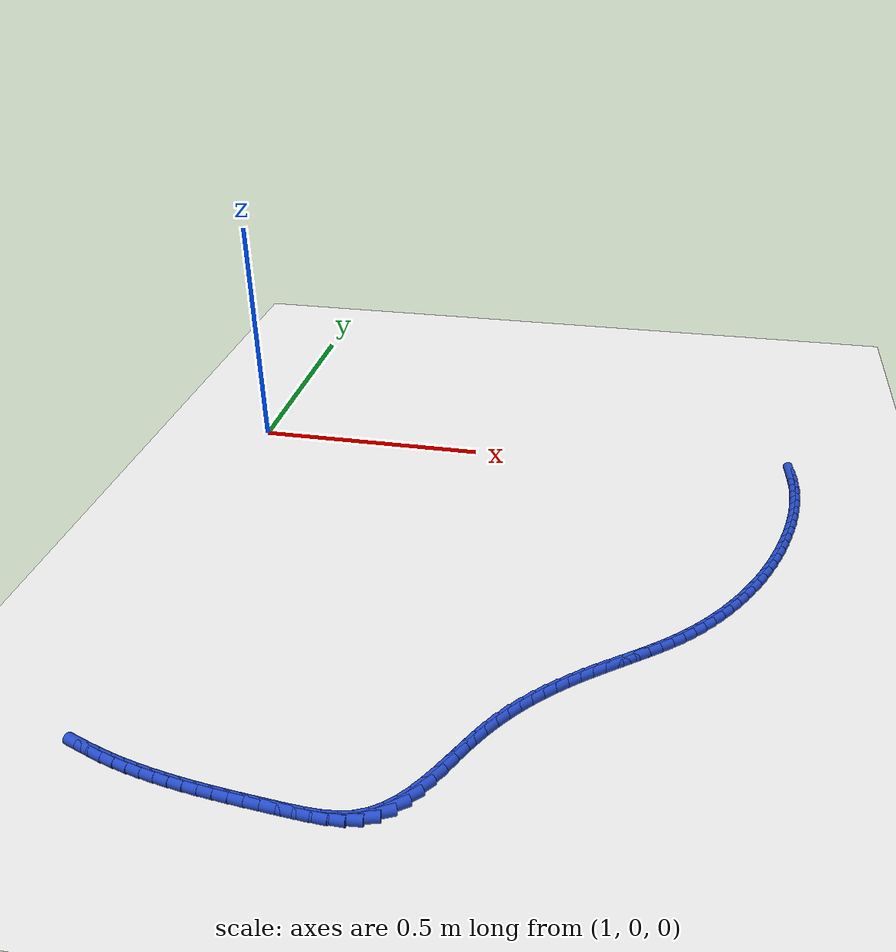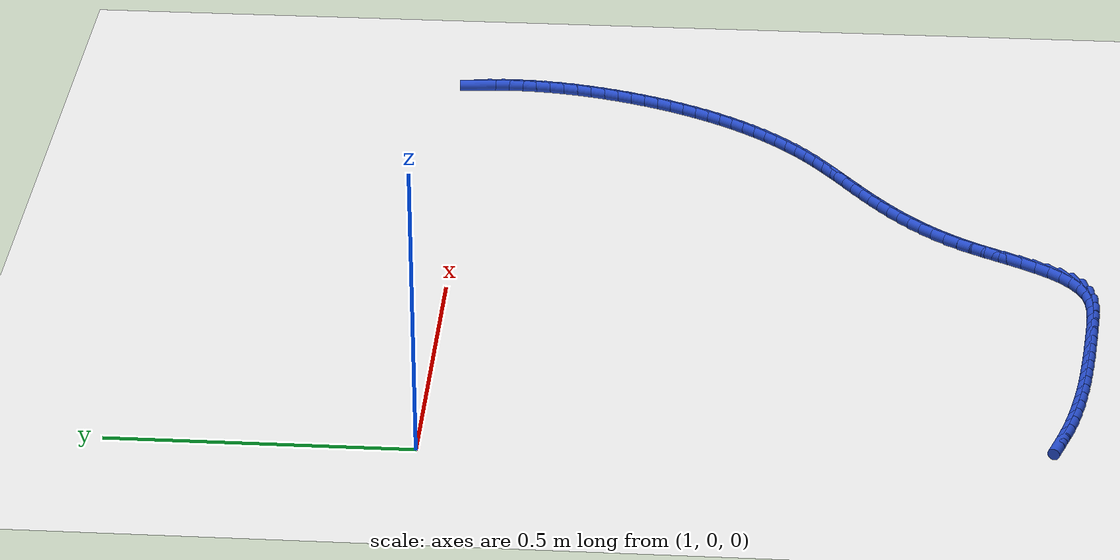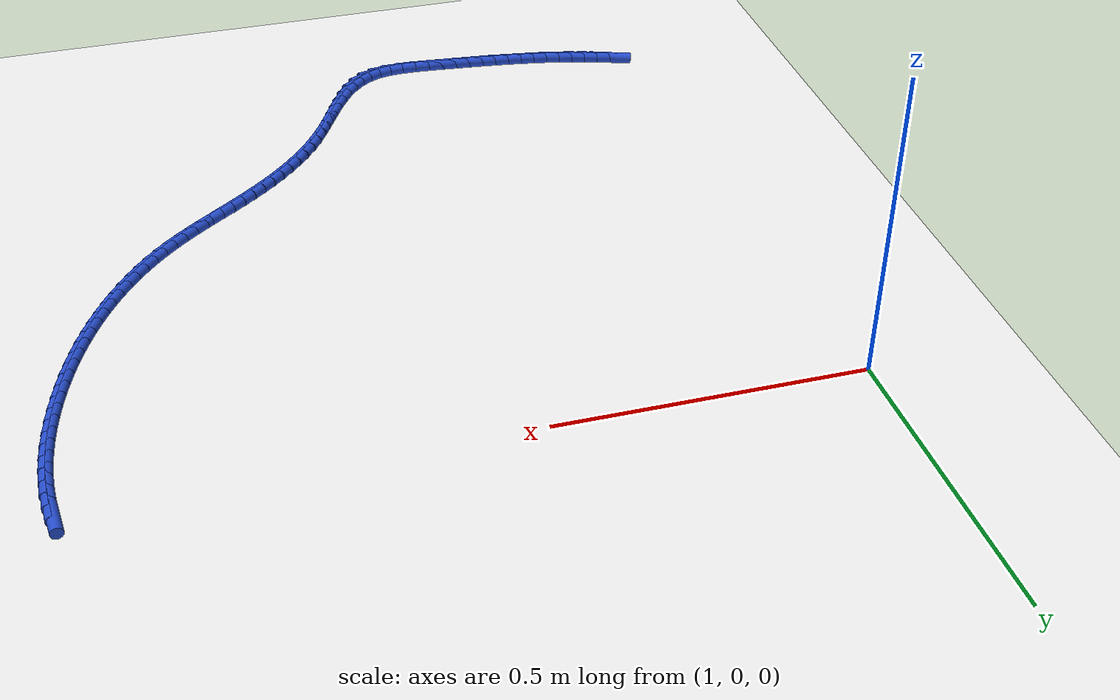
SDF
<sdf version="1.6">
 <world name="default">
  <model name="ground_plane">
   <static>1</static>
   <link name="link">
    <collision name="collision">
     <geometry><plane><normal>0 0 1</normal><size>100 100</size></plane></geometry>
     <surface><friction><ode><mu>100</mu><mu2>50</mu2></ode></friction></surface>
    </collision>
    <visual name="visual">
     <cast_shadows>0</cast_shadows>
     <geometry><plane><normal>0 0 1</normal><size>100 100</size></plane></geometry>
     <material>
      <script><uri>file://media/materials/scripts/gazebo.material</uri><name>Gazebo/WhiteGlow</name></script>
     </material>
    </visual>
   </link>
  </model>
  <model name="line">
   <link name="link_142">
    <pose>2.202571903982697 0.003980499568699787 0.01 0 1.57 -1.4717529084128098</pose>
    <collision name="collision">
     <geometry><cylinder><radius>0.01</radius><length>0.08</length></cylinder></geometry>
    </collision>
    <visual name="visual">
     <material>
      <script><name>Gazebo/Blue</name><uri>file://media/materials/scripts/gazebo.material</uri></script>
     </material>
     <geometry><cylinder><radius>0.01</radius><length>0.08</length></cylinder></geometry>
    </visual>
   </link>
   <link name="link_143">
    <pose>2.2050631805690757 -0.021090576868208956 0.01 0 1.57 -1.5223417057600646</pose>
    <collision name="collision">
     <geometry><cylinder><radius>0.01</radius><length>0.08</length></cylinder></geometry>
    </collision>
    <visual name="visual">
     <material>
      <script><name>Gazebo/Blue</name><uri>file://media/materials/scripts/gazebo.material</uri></script>
     </material>
     <geometry><cylinder><radius>0.01</radius><length>0.08</length></cylinder></geometry>
    </visual>
   </link>
   <link name="link_144">
    <pose>2.206289885387265 -0.0463873308609271 0.01 0 1.57 -1.569900902207503</pose>
    <collision name="collision">
     <geometry><cylinder><radius>0.01</radius><length>0.08</length></cylinder></geometry>
    </collision>
    <visual name="visual">
     <material>
      <script><name>Gazebo/Blue</name><uri>file://media/materials/scripts/gazebo.material</uri></script>
     </material>
     <geometry><cylinder><radius>0.01</radius><length>0.08</length></cylinder></geometry>
    </visual>
   </link>
   <link name="link_145">
    <pose>2.206312691911608 -0.07185739117538699 0.01 0 1.57 1.5270425293367789</pose>
    <collision name="collision">
     <geometry><cylinder><radius>0.01</radius><length>0.08</length></cylinder></geometry>
    </collision>
    <visual name="visual">
     <material>
      <script><name>Gazebo/Blue</name><uri>file://media/materials/scripts/gazebo.material</uri></script>
     </material>
     <geometry><cylinder><radius>0.01</radius><length>0.08</length></cylinder></geometry>
    </visual>
   </link>
   <link name="link_146">
    <pose>2.205192273616449 -0.09744838657752182 0.01 0 1.57 1.4851525777774603</pose>
    <collision name="collision">
     <geometry><cylinder><radius>0.01</radius><length>0.08</length></cylinder></geometry>
    </collision>
    <visual name="visual">
     <material>
      <script><name>Gazebo/Blue</name><uri>file://media/materials/scripts/gazebo.material</uri></script>
     </material>
     <geometry><cylinder><radius>0.01</radius><length>0.08</length></cylinder></geometry>
    </visual>
   </link>
   <link name="link_147">
    <pose>2.202989303976132 -0.12310794583326237 0.01 0 1.57 1.4458516390549057</pose>
    <collision name="collision">
     <geometry><cylinder><radius>0.01</radius><length>0.08</length></cylinder></geometry>
    </collision>
    <visual name="visual">
     <material>
      <script><name>Gazebo/Blue</name><uri>file://media/materials/scripts/gazebo.material</uri></script>
     </material>
     <geometry><cylinder><radius>0.01</radius><length>0.08</length></cylinder></geometry>
    </visual>
   </link>
   <link name="link_148">
    <pose>2.199764456464999 -0.14878369770854188 0.01 0 1.57 1.408958928594516</pose>
    <collision name="collision">
     <geometry><cylinder><radius>0.01</radius><length>0.08</length></cylinder></geometry>
    </collision>
    <visual name="visual">
     <material>
      <script><name>Gazebo/Blue</name><uri>file://media/materials/scripts/gazebo.material</uri></script>
     </material>
     <geometry><cylinder><radius>0.01</radius><length>0.08</length></cylinder></geometry>
    </visual>
   </link>
   <link name="link_149">
    <pose>2.1955784045573945 -0.17442327096929255 0.01 0 1.57 1.374289864513587</pose>
    <collision name="collision">
     <geometry><cylinder><radius>0.01</radius><length>0.08</length></cylinder></geometry>
    </collision>
    <visual name="visual">
     <material>
      <script><name>Gazebo/Blue</name><uri>file://media/materials/scripts/gazebo.material</uri></script>
     </material>
     <geometry><cylinder><radius>0.01</radius><length>0.08</length></cylinder></geometry>
    </visual>
   </link>
   <link name="link_150">
    <pose>2.1904918217276634 -0.19997429438144698 0.01 0 1.57 1.3416608218871677</pose>
    <collision name="collision">
     <geometry><cylinder><radius>0.01</radius><length>0.08</length></cylinder></geometry>
    </collision>
    <visual name="visual">
     <material>
      <script><name>Gazebo/Blue</name><uri>file://media/materials/scripts/gazebo.material</uri></script>
     </material>
     <geometry><cylinder><radius>0.01</radius><length>0.08</length></cylinder></geometry>
    </visual>
   </link>
   <link name="link_151">
    <pose>2.1845653814501476 -0.2253843967109374 0.01 0 1.57 1.3108922661888995</pose>
    <collision name="collision">
     <geometry><cylinder><radius>0.01</radius><length>0.08</length></cylinder></geometry>
    </collision>
    <visual name="visual">
     <material>
      <script><name>Gazebo/Blue</name><uri>file://media/materials/scripts/gazebo.material</uri></script>
     </material>
     <geometry><cylinder><radius>0.01</radius><length>0.08</length></cylinder></geometry>
    </visual>
   </link>
   <link name="link_152">
    <pose>2.177859757199191 -0.2506012067236962 0.01 0 1.57 1.281630809211017</pose>
    <collision name="collision">
     <geometry><cylinder><radius>0.01</radius><length>0.08</length></cylinder></geometry>
    </collision>
    <visual name="visual">
     <material>
      <script><name>Gazebo/Blue</name><uri>file://media/materials/scripts/gazebo.material</uri></script>
     </material>
     <geometry><cylinder><radius>0.01</radius><length>0.08</length></cylinder></geometry>
    </visual>
   </link>
   <link name="link_153">
    <pose>2.170430240259029 -0.2755740187253609 0.01 0 1.57 1.2524084829252893</pose>
    <collision name="collision">
     <geometry><cylinder><radius>0.01</radius><length>0.08</length></cylinder></geometry>
    </collision>
    <visual name="visual">
     <material>
      <script><name>Gazebo/Blue</name><uri>file://media/materials/scripts/gazebo.material</uri></script>
     </material>
     <geometry><cylinder><radius>0.01</radius><length>0.08</length></cylinder></geometry>
    </visual>
   </link>
   <link name="link_154">
    <pose>2.162292239316222 -0.3002644688468511 0.01 0 1.57 1.22255955914301</pose>
    <collision name="collision">
     <geometry><cylinder><radius>0.01</radius><length>0.08</length></cylinder></geometry>
    </collision>
    <visual name="visual">
     <material>
      <script><name>Gazebo/Blue</name><uri>file://media/materials/scripts/gazebo.material</uri></script>
     </material>
     <geometry><cylinder><radius>0.01</radius><length>0.08</length></cylinder></geometry>
    </visual>
   </link>
   <link name="link_155">
    <pose>2.153443246448709 -0.32463973758345177 0.01 0 1.57 1.192025515693749</pose>
    <collision name="collision">
     <geometry><cylinder><radius>0.01</radius><length>0.08</length></cylinder></geometry>
    </collision>
    <visual name="visual">
     <material>
      <script><name>Gazebo/Blue</name><uri>file://media/materials/scripts/gazebo.material</uri></script>
     </material>
     <geometry><cylinder><radius>0.01</radius><length>0.08</length></cylinder></geometry>
    </visual>
   </link>
   <link name="link_156">
    <pose>2.1438806683373692 -0.3486670318568977 0.01 0 1.57 1.1607522819646585</pose>
    <collision name="collision">
     <geometry><cylinder><radius>0.01</radius><length>0.08</length></cylinder></geometry>
    </collision>
    <visual name="visual">
     <material>
      <script><name>Gazebo/Blue</name><uri>file://media/materials/scripts/gazebo.material</uri></script>
     </material>
     <geometry><cylinder><radius>0.01</radius><length>0.08</length></cylinder></geometry>
    </visual>
   </link>
   <link name="link_157">
    <pose>2.1336019116630807 -0.3723135585889263 0.01 0 1.57 1.128687927918063</pose>
    <collision name="collision">
     <geometry><cylinder><radius>0.01</radius><length>0.08</length></cylinder></geometry>
    </collision>
    <visual name="visual">
     <material>
      <script><name>Gazebo/Blue</name><uri>file://media/materials/scripts/gazebo.material</uri></script>
     </material>
     <geometry><cylinder><radius>0.01</radius><length>0.08</length></cylinder></geometry>
    </visual>
   </link>
   <link name="link_158">
    <pose>2.1226043831067236 -0.39554652470127427 0.01 0 1.57 1.0957833314433907</pose>
    <collision name="collision">
     <geometry><cylinder><radius>0.01</radius><length>0.08</length></cylinder></geometry>
    </collision>
    <visual name="visual">
     <material>
      <script><name>Gazebo/Blue</name><uri>file://media/materials/scripts/gazebo.material</uri></script>
     </material>
     <geometry><cylinder><radius>0.01</radius><length>0.08</length></cylinder></geometry>
    </visual>
   </link>
   <link name="link_159">
    <pose>2.1108854893491764 -0.4183331371156783 0.01 0 1.57 1.0619929802103352</pose>
    <collision name="collision">
     <geometry><cylinder><radius>0.01</radius><length>0.08</length></cylinder></geometry>
    </collision>
    <visual name="visual">
     <material>
      <script><name>Gazebo/Blue</name><uri>file://media/materials/scripts/gazebo.material</uri></script>
     </material>
     <geometry><cylinder><radius>0.01</radius><length>0.08</length></cylinder></geometry>
    </visual>
   </link>
   <link name="link_160">
    <pose>2.0984426370713187 -0.44064060275387495 0.01 0 1.57 1.0272759129590288</pose>
    <collision name="collision">
     <geometry><cylinder><radius>0.01</radius><length>0.08</length></cylinder></geometry>
    </collision>
    <visual name="visual">
     <material>
      <script><name>Gazebo/Blue</name><uri>file://media/materials/scripts/gazebo.material</uri></script>
     </material>
     <geometry><cylinder><radius>0.01</radius><length>0.08</length></cylinder></geometry>
    </visual>
   </link>
   <link name="link_161">
    <pose>2.085273232954029 -0.46243612853760074 0.01 0 1.57 0.991596799805963</pose>
    <collision name="collision">
     <geometry><cylinder><radius>0.01</radius><length>0.08</length></cylinder></geometry>
    </collision>
    <visual name="visual">
     <material>
      <script><name>Gazebo/Blue</name><uri>file://media/materials/scripts/gazebo.material</uri></script>
     </material>
     <geometry><cylinder><radius>0.01</radius><length>0.08</length></cylinder></geometry>
    </visual>
   </link>
   <link name="link_162">
    <pose>2.071374683678186 -0.4836869213885923 0.01 0 1.57 0.954927153661295</pose>
    <collision name="collision">
     <geometry><cylinder><radius>0.01</radius><length>0.08</length></cylinder></geometry>
    </collision>
    <visual name="visual">
     <material>
      <script><name>Gazebo/Blue</name><uri>file://media/materials/scripts/gazebo.material</uri></script>
     </material>
     <geometry><cylinder><radius>0.01</radius><length>0.08</length></cylinder></geometry>
    </visual>
   </link>
   <link name="link_163">
    <pose>2.05674439592467 -0.5043601882285866 0.01 0 1.57 0.9172466550394196</pose>
    <collision name="collision">
     <geometry><cylinder><radius>0.01</radius><length>0.08</length></cylinder></geometry>
    </collision>
    <visual name="visual">
     <material>
      <script><name>Gazebo/Blue</name><uri>file://media/materials/scripts/gazebo.material</uri></script>
     </material>
     <geometry><cylinder><radius>0.01</radius><length>0.08</length></cylinder></geometry>
    </visual>
   </link>
   <link name="link_164">
    <pose>2.0413797763743586 -0.5244231359793202 0.01 0 1.57 0.8785445603831498</pose>
    <collision name="collision">
     <geometry><cylinder><radius>0.01</radius><length>0.08</length></cylinder></geometry>
    </collision>
    <visual name="visual">
     <material>
      <script><name>Gazebo/Blue</name><uri>file://media/materials/scripts/gazebo.material</uri></script>
     </material>
     <geometry><cylinder><radius>0.01</radius><length>0.08</length></cylinder></geometry>
    </visual>
   </link>
   <link name="link_165">
    <pose>2.0252782317081324 -0.5438429715625293 0.01 0 1.57 0.8388211498048229</pose>
    <collision name="collision">
     <geometry><cylinder><radius>0.01</radius><length>0.08</length></cylinder></geometry>
    </collision>
    <visual name="visual">
     <material>
      <script><name>Gazebo/Blue</name><uri>file://media/materials/scripts/gazebo.material</uri></script>
     </material>
     <geometry><cylinder><radius>0.01</radius><length>0.08</length></cylinder></geometry>
    </visual>
   </link>
   <link name="link_166">
    <pose>2.0084371686068696 -0.5625869018999504 0.01 0 1.57 0.7980891545954472</pose>
    <collision name="collision">
     <geometry><cylinder><radius>0.01</radius><length>0.08</length></cylinder></geometry>
    </collision>
    <visual name="visual">
     <material>
      <script><name>Gazebo/Blue</name><uri>file://media/materials/scripts/gazebo.material</uri></script>
     </material>
     <geometry><cylinder><radius>0.01</radius><length>0.08</length></cylinder></geometry>
    </visual>
   </link>
   <link name="link_167">
    <pose>1.99085399375145 -0.5806221339133206 0.01 0 1.57 0.7564014263131812</pose>
    <collision name="collision">
     <geometry><cylinder><radius>0.01</radius><length>0.08</length></cylinder></geometry>
    </collision>
    <visual name="visual">
     <material>
      <script><name>Gazebo/Blue</name><uri>file://media/materials/scripts/gazebo.material</uri></script>
     </material>
     <geometry><cylinder><radius>0.01</radius><length>0.08</length></cylinder></geometry>
    </visual>
   </link>
   <link name="link_168">
    <pose>1.9725265573376223 -0.5979163685064866 0.01 0 1.57 0.7169491589336423</pose>
    <collision name="collision">
     <geometry><cylinder><radius>0.01</radius><length>0.08</length></cylinder></geometry>
    </collision>
    <visual name="visual">
     <material>
      <script><name>Gazebo/Blue</name><uri>file://media/materials/scripts/gazebo.material</uri></script>
     </material>
     <geometry><cylinder><radius>0.01</radius><length>0.08</length></cylinder></geometry>
    </visual>
   </link>
   <link name="link_169">
    <pose>1.9535058158553387 -0.6144964558046773 0.01 0 1.57 0.685836477690584</pose>
    <collision name="collision">
     <geometry><cylinder><radius>0.01</radius><length>0.08</length></cylinder></geometry>
    </collision>
    <visual name="visual">
     <material>
      <script><name>Gazebo/Blue</name><uri>file://media/materials/scripts/gazebo.material</uri></script>
     </material>
     <geometry><cylinder><radius>0.01</radius><length>0.08</length></cylinder></geometry>
    </visual>
   </link>
   <link name="link_170">
    <pose>1.9339455668150853 -0.6305037891597257 0.01 0 1.57 0.6636858050810351</pose>
    <collision name="collision">
     <geometry><cylinder><radius>0.01</radius><length>0.08</length></cylinder></geometry>
    </collision>
    <visual name="visual">
     <material>
      <script><name>Gazebo/Blue</name><uri>file://media/materials/scripts/gazebo.material</uri></script>
     </material>
     <geometry><cylinder><radius>0.01</radius><length>0.08</length></cylinder></geometry>
    </visual>
   </link>
   <link name="link_171">
    <pose>1.9140113818396185 -0.646092875803537 0.01 0 1.57 0.6504055171697967</pose>
    <collision name="collision">
     <geometry><cylinder><radius>0.01</radius><length>0.08</length></cylinder></geometry>
    </collision>
    <visual name="visual">
     <material>
      <script><name>Gazebo/Blue</name><uri>file://media/materials/scripts/gazebo.material</uri></script>
     </material>
     <geometry><cylinder><radius>0.01</radius><length>0.08</length></cylinder></geometry>
    </visual>
   </link>
   <link name="link_172">
    <pose>1.8938688325516961 -0.6614182229680168 0.01 0 1.57 0.6459414428725825</pose>
    <collision name="collision">
     <geometry><cylinder><radius>0.01</radius><length>0.08</length></cylinder></geometry>
    </collision>
    <visual name="visual">
     <material>
      <script><name>Gazebo/Blue</name><uri>file://media/materials/scripts/gazebo.material</uri></script>
     </material>
     <geometry><cylinder><radius>0.01</radius><length>0.08</length></cylinder></geometry>
    </visual>
   </link>
   <link name="link_173">
    <pose>1.873683490574073 -0.6766343378850707 0.01 0 1.57 0.6503076399894958</pose>
    <collision name="collision">
     <geometry><cylinder><radius>0.01</radius><length>0.08</length></cylinder></geometry>
    </collision>
    <visual name="visual">
     <material>
      <script><name>Gazebo/Blue</name><uri>file://media/materials/scripts/gazebo.material</uri></script>
     </material>
     <geometry><cylinder><radius>0.01</radius><length>0.08</length></cylinder></geometry>
    </visual>
   </link>
   <link name="link_174">
    <pose>1.853620927529509 -0.6918957277866032 0.01 0 1.57 0.6635975640018186</pose>
    <collision name="collision">
     <geometry><cylinder><radius>0.01</radius><length>0.08</length></cylinder></geometry>
    </collision>
    <visual name="visual">
     <material>
      <script><name>Gazebo/Blue</name><uri>file://media/materials/scripts/gazebo.material</uri></script>
     </material>
     <geometry><cylinder><radius>0.01</radius><length>0.08</length></cylinder></geometry>
    </visual>
   </link>
   <link name="link_175">
    <pose>1.8338467148480784 -0.7073568998240649 0.01 0 1.57 0.685099390628825</pose>
    <collision name="collision">
     <geometry><cylinder><radius>0.01</radius><length>0.08</length></cylinder></geometry>
    </collision>
    <visual name="visual">
     <material>
      <script><name>Gazebo/Blue</name><uri>file://media/materials/scripts/gazebo.material</uri></script>
     </material>
     <geometry><cylinder><radius>0.01</radius><length>0.08</length></cylinder></geometry>
    </visual>
   </link>
   <link name="link_176">
    <pose>1.8145035325088565 -0.7231628026058033 0.01 0 1.57 0.7116083448717434</pose>
    <collision name="collision">
     <geometry><cylinder><radius>0.01</radius><length>0.08</length></cylinder></geometry>
    </collision>
    <visual name="visual">
     <material>
      <script><name>Gazebo/Blue</name><uri>file://media/materials/scripts/gazebo.material</uri></script>
     </material>
     <geometry><cylinder><radius>0.01</radius><length>0.08</length></cylinder></geometry>
    </visual>
   </link>
   <link name="link_177">
    <pose>1.7956480217607695 -0.7394224584500177 0.01 0 1.57 0.7422495794925981</pose>
    <collision name="collision">
     <geometry><cylinder><radius>0.01</radius><length>0.08</length></cylinder></geometry>
    </collision>
    <visual name="visual">
     <material>
      <script><name>Gazebo/Blue</name><uri>file://media/materials/scripts/gazebo.material</uri></script>
     </material>
     <geometry><cylinder><radius>0.01</radius><length>0.08</length></cylinder></geometry>
    </visual>
   </link>
   <link name="link_178">
    <pose>1.777316613481887 -0.7562364506423226 0.01 0 1.57 0.776829561166699</pose>
    <collision name="collision">
     <geometry><cylinder><radius>0.01</radius><length>0.08</length></cylinder></geometry>
    </collision>
    <visual name="visual">
     <material>
      <script><name>Gazebo/Blue</name><uri>file://media/materials/scripts/gazebo.material</uri></script>
     </material>
     <geometry><cylinder><radius>0.01</radius><length>0.08</length></cylinder></geometry>
    </visual>
   </link>
   <link name="link_179">
    <pose>1.7595457385502806 -0.7737053624683315 0.01 0 1.57 0.8150661150343368</pose>
    <collision name="collision">
     <geometry><cylinder><radius>0.01</radius><length>0.08</length></cylinder></geometry>
    </collision>
    <visual name="visual">
     <material>
      <script><name>Gazebo/Blue</name><uri>file://media/materials/scripts/gazebo.material</uri></script>
     </material>
     <geometry><cylinder><radius>0.01</radius><length>0.08</length></cylinder></geometry>
    </visual>
   </link>
   <link name="link_180">
    <pose>1.7423718278440214 -0.7919297772136594 0.01 0 1.57 0.8565834863040692</pose>
    <collision name="collision">
     <geometry><cylinder><radius>0.01</radius><length>0.08</length></cylinder></geometry>
    </collision>
    <visual name="visual">
     <material>
      <script><name>Gazebo/Blue</name><uri>file://media/materials/scripts/gazebo.material</uri></script>
     </material>
     <geometry><cylinder><radius>0.01</radius><length>0.08</length></cylinder></geometry>
    </visual>
   </link>
   <link name="link_181">
    <pose>1.7258313122411795 -0.8110102781639207 0.01 0 1.57 0.9009141500686033</pose>
    <collision name="collision">
     <geometry><cylinder><radius>0.01</radius><length>0.08</length></cylinder></geometry>
    </collision>
    <visual name="visual">
     <material>
      <script><name>Gazebo/Blue</name><uri>file://media/materials/scripts/gazebo.material</uri></script>
     </material>
     <geometry><cylinder><radius>0.01</radius><length>0.08</length></cylinder></geometry>
    </visual>
   </link>
   <link name="link_182">
    <pose>1.7099606226198265 -0.8310474486047282 0.01 0 1.57 0.9475089776392133</pose>
    <collision name="collision">
     <geometry><cylinder><radius>0.01</radius><length>0.08</length></cylinder></geometry>
    </collision>
    <visual name="visual">
     <material>
      <script><name>Gazebo/Blue</name><uri>file://media/materials/scripts/gazebo.material</uri></script>
     </material>
     <geometry><cylinder><radius>0.01</radius><length>0.08</length></cylinder></geometry>
    </visual>
   </link>
   <link name="link_183">
    <pose>1.6947961898580337 -0.8521418718216973 0.01 0 1.57 0.9957561772378263</pose>
    <collision name="collision">
     <geometry><cylinder><radius>0.01</radius><length>0.08</length></cylinder></geometry>
    </collision>
    <visual name="visual">
     <material>
      <script><name>Gazebo/Blue</name><uri>file://media/materials/scripts/gazebo.material</uri></script>
     </material>
     <geometry><cylinder><radius>0.01</radius><length>0.08</length></cylinder></geometry>
    </visual>
   </link>
   <link name="link_184">
    <pose>1.680374444833871 -0.8743941311004417 0.01 0 1.57 1.0432378090990924</pose>
    <collision name="collision">
     <geometry><cylinder><radius>0.01</radius><length>0.08</length></cylinder></geometry>
    </collision>
    <visual name="visual">
     <material>
      <script><name>Gazebo/Blue</name><uri>file://media/materials/scripts/gazebo.material</uri></script>
     </material>
     <geometry><cylinder><radius>0.01</radius><length>0.08</length></cylinder></geometry>
    </visual>
   </link>
   <link name="link_185">
    <pose>1.6667052523197976 -0.897854834794365 0.01 0 1.57 1.0750990695205411</pose>
    <collision name="collision">
     <geometry><cylinder><radius>0.01</radius><length>0.08</length></cylinder></geometry>
    </collision>
    <visual name="visual">
     <material>
      <script><name>Gazebo/Blue</name><uri>file://media/materials/scripts/gazebo.material</uri></script>
     </material>
     <geometry><cylinder><radius>0.01</radius><length>0.08</length></cylinder></geometry>
    </visual>
   </link>
   <link name="link_186">
    <pose>1.6535704841445293 -0.9221457014499097 0.01 0 1.57 1.0854600020513474</pose>
    <collision name="collision">
     <geometry><cylinder><radius>0.01</radius><length>0.08</length></cylinder></geometry>
    </collision>
    <visual name="visual">
     <material>
      <script><name>Gazebo/Blue</name><uri>file://media/materials/scripts/gazebo.material</uri></script>
     </material>
     <geometry><cylinder><radius>0.01</radius><length>0.08</length></cylinder></geometry>
    </visual>
   </link>
   <link name="link_187">
    <pose>1.640635975464932 -0.946670166779963 0.01 0 1.57 1.0749244566613823</pose>
    <collision name="collision">
     <geometry><cylinder><radius>0.01</radius><length>0.08</length></cylinder></geometry>
    </collision>
    <visual name="visual">
     <material>
      <script><name>Gazebo/Blue</name><uri>file://media/materials/scripts/gazebo.material</uri></script>
     </material>
     <geometry><cylinder><radius>0.01</radius><length>0.08</length></cylinder></geometry>
    </visual>
   </link>
   <link name="link_188">
    <pose>1.627566642178511 -0.9708299372291164 0.01 0 1.57 1.0424714875259806</pose>
    <collision name="collision">
     <geometry><cylinder><radius>0.01</radius><length>0.08</length></cylinder></geometry>
    </collision>
    <visual name="visual">
     <material>
      <script><name>Gazebo/Blue</name><uri>file://media/materials/scripts/gazebo.material</uri></script>
     </material>
     <geometry><cylinder><radius>0.01</radius><length>0.08</length></cylinder></geometry>
    </visual>
   </link>
   <link name="link_189">
    <pose>1.6140274001827732 -0.994026719241961 0.01 0 1.57 0.9853397479485267</pose>
    <collision name="collision">
     <geometry><cylinder><radius>0.01</radius><length>0.08</length></cylinder></geometry>
    </collision>
    <visual name="visual">
     <material>
      <script><name>Gazebo/Blue</name><uri>file://media/materials/scripts/gazebo.material</uri></script>
     </material>
     <geometry><cylinder><radius>0.01</radius><length>0.08</length></cylinder></geometry>
    </visual>
   </link>
   <link name="link_190">
    <pose>1.5996831653752235 -1.0156622192630886 0.01 0 1.57 0.8990816668295133</pose>
    <collision name="collision">
     <geometry><cylinder><radius>0.01</radius><length>0.08</length></cylinder></geometry>
    </collision>
    <visual name="visual">
     <material>
      <script><name>Gazebo/Blue</name><uri>file://media/materials/scripts/gazebo.material</uri></script>
     </material>
     <geometry><cylinder><radius>0.01</radius><length>0.08</length></cylinder></geometry>
    </visual>
   </link>
   <link name="link_191">
    <pose>1.584198853653369 -1.0351381437370901 0.01 0 1.57 0.7782297859781041</pose>
    <collision name="collision">
     <geometry><cylinder><radius>0.01</radius><length>0.08</length></cylinder></geometry>
    </collision>
    <visual name="visual">
     <material>
      <script><name>Gazebo/Blue</name><uri>file://media/materials/scripts/gazebo.material</uri></script>
     </material>
     <geometry><cylinder><radius>0.01</radius><length>0.08</length></cylinder></geometry>
    </visual>
   </link>
   <link name="link_192">
    <pose>1.567239380914716 -1.0518561991085569 0.01 0 1.57 0.6186584465037017</pose>
    <collision name="collision">
     <geometry><cylinder><radius>0.01</radius><length>0.08</length></cylinder></geometry>
    </collision>
    <visual name="visual">
     <material>
      <script><name>Gazebo/Blue</name><uri>file://media/materials/scripts/gazebo.material</uri></script>
     </material>
     <geometry><cylinder><radius>0.01</radius><length>0.08</length></cylinder></geometry>
    </visual>
   </link>
   <link name="link_193">
    <pose>1.5484696630567694 -1.0652180918220806 0.01 0 1.57 0.4227181715066391</pose>
    <collision name="collision">
     <geometry><cylinder><radius>0.01</radius><length>0.08</length></cylinder></geometry>
    </collision>
    <visual name="visual">
     <material>
      <script><name>Gazebo/Blue</name><uri>file://media/materials/scripts/gazebo.material</uri></script>
     </material>
     <geometry><cylinder><radius>0.01</radius><length>0.08</length></cylinder></geometry>
    </visual>
   </link>
   <link name="link_194">
    <pose>1.5275550514172485 -1.0746262530639206 0.01 0 1.57 0.22252618602116742</pose>
    <collision name="collision">
     <geometry><cylinder><radius>0.01</radius><length>0.08</length></cylinder></geometry>
    </collision>
    <visual name="visual">
     <material>
      <script><name>Gazebo/Blue</name><uri>file://media/materials/scripts/gazebo.material</uri></script>
     </material>
     <geometry><cylinder><radius>0.01</radius><length>0.08</length></cylinder></geometry>
    </visual>
   </link>
   <link name="link_195">
    <pose>1.5043918295117822 -1.0798674748735944 0.01 0 1.57 0.07519639515401282</pose>
    <collision name="collision">
     <geometry><cylinder><radius>0.01</radius><length>0.08</length></cylinder></geometry>
    </collision>
    <visual name="visual">
     <material>
      <script><name>Gazebo/Blue</name><uri>file://media/materials/scripts/gazebo.material</uri></script>
     </material>
     <geometry><cylinder><radius>0.01</radius><length>0.08</length></cylinder></geometry>
    </visual>
   </link>
   <link name="link_196">
    <pose>1.4794862774233366 -1.0817438205413743 0.01 0 1.57 -0.01999466886422275</pose>
    <collision name="collision">
     <geometry><cylinder><radius>0.01</radius><length>0.08</length></cylinder></geometry>
    </collision>
    <visual name="visual">
     <material>
      <script><name>Gazebo/Blue</name><uri>file://media/materials/scripts/gazebo.material</uri></script>
     </material>
     <geometry><cylinder><radius>0.01</radius><length>0.08</length></cylinder></geometry>
    </visual>
   </link>
   <link name="link_197">
    <pose>1.4534442287018026 -1.0812230489995984 0.01 0 1.57 -0.07325710901148517</pose>
    <collision name="collision">
     <geometry><cylinder><radius>0.01</radius><length>0.08</length></cylinder></geometry>
    </collision>
    <visual name="visual">
     <material>
      <script><name>Gazebo/Blue</name><uri>file://media/materials/scripts/gazebo.material</uri></script>
     </material>
     <geometry><cylinder><radius>0.01</radius><length>0.08</length></cylinder></geometry>
    </visual>
   </link>
   <link name="link_198">
    <pose>1.426871516897072 -1.0792729191806056 0.01 0 1.57 -0.09171043639380197</pose>
    <collision name="collision">
     <geometry><cylinder><radius>0.01</radius><length>0.08</length></cylinder></geometry>
    </collision>
    <visual name="visual">
     <material>
      <script><name>Gazebo/Blue</name><uri>file://media/materials/scripts/gazebo.material</uri></script>
     </material>
     <geometry><cylinder><radius>0.01</radius><length>0.08</length></cylinder></geometry>
    </visual>
   </link>
   <link name="link_199">
    <pose>1.4003577209034004 -1.0768344871517894 0.01 0 1.57 -0.09535414225252564</pose>
    <collision name="collision">
     <geometry><cylinder><radius>0.01</radius><length>0.08</length></cylinder></geometry>
    </collision>
    <visual name="visual">
     <material>
      <script><name>Gazebo/Blue</name><uri>file://media/materials/scripts/gazebo.material</uri></script>
     </material>
     <geometry><cylinder><radius>0.01</radius><length>0.08</length></cylinder></geometry>
    </visual>
   </link>
   <link name="link_200">
    <pose>1.3741768771865022 -1.074330441379095 0.01 0 1.57 -0.10085974622599768</pose>
    <collision name="collision">
     <geometry><cylinder><radius>0.01</radius><length>0.08</length></cylinder></geometry>
    </collision>
    <visual name="visual">
     <material>
      <script><name>Gazebo/Blue</name><uri>file://media/materials/scripts/gazebo.material</uri></script>
     </material>
     <geometry><cylinder><radius>0.01</radius><length>0.08</length></cylinder></geometry>
    </visual>
   </link>
   <link name="link_201">
    <pose>1.3483168328744681 -1.0717133234731413 0.01 0 1.57 -0.10889789952363169</pose>
    <collision name="collision">
     <geometry><cylinder><radius>0.01</radius><length>0.08</length></cylinder></geometry>
    </collision>
    <visual name="visual">
     <material>
      <script><name>Gazebo/Blue</name><uri>file://media/materials/scripts/gazebo.material</uri></script>
     </material>
     <geometry><cylinder><radius>0.01</radius><length>0.08</length></cylinder></geometry>
    </visual>
   </link>
   <link name="link_202">
    <pose>1.3227550686081686 -1.0689186451600365 0.01 0 1.57 -0.1195227476960508</pose>
    <collision name="collision">
     <geometry><cylinder><radius>0.01</radius><length>0.08</length></cylinder></geometry>
    </collision>
    <visual name="visual">
     <material>
      <script><name>Gazebo/Blue</name><uri>file://media/materials/scripts/gazebo.material</uri></script>
     </material>
     <geometry><cylinder><radius>0.01</radius><length>0.08</length></cylinder></geometry>
    </visual>
   </link>
   <link name="link_203">
    <pose>1.2974690650284748 -1.0658819181658892 0.01 0 1.57 -0.1327698461160104</pose>
    <collision name="collision">
     <geometry><cylinder><radius>0.01</radius><length>0.08</length></cylinder></geometry>
    </collision>
    <visual name="visual">
     <material>
      <script><name>Gazebo/Blue</name><uri>file://media/materials/scripts/gazebo.material</uri></script>
     </material>
     <geometry><cylinder><radius>0.01</radius><length>0.08</length></cylinder></geometry>
    </visual>
   </link>
   <link name="link_204">
    <pose>1.2724363027762562 -1.0625386542168063 0.01 0 1.57 -0.14865268190573497</pose>
    <collision name="collision">
     <geometry><cylinder><radius>0.01</radius><length>0.08</length></cylinder></geometry>
    </collision>
    <visual name="visual">
     <material>
      <script><name>Gazebo/Blue</name><uri>file://media/materials/scripts/gazebo.material</uri></script>
     </material>
     <geometry><cylinder><radius>0.01</radius><length>0.08</length></cylinder></geometry>
    </visual>
   </link>
   <link name="link_205">
    <pose>1.2476342624923842 -1.0588243650388964 0.01 0 1.57 -0.16715890951474263</pose>
    <collision name="collision">
     <geometry><cylinder><radius>0.01</radius><length>0.08</length></cylinder></geometry>
    </collision>
    <visual name="visual">
     <material>
      <script><name>Gazebo/Blue</name><uri>file://media/materials/scripts/gazebo.material</uri></script>
     </material>
     <geometry><cylinder><radius>0.01</radius><length>0.08</length></cylinder></geometry>
    </visual>
   </link>
   <link name="link_206">
    <pose>1.223040424817729 -1.0546745623582674 0.01 0 1.57 -0.18824649898334628</pose>
    <collision name="collision">
     <geometry><cylinder><radius>0.01</radius><length>0.08</length></cylinder></geometry>
    </collision>
    <visual name="visual">
     <material>
      <script><name>Gazebo/Blue</name><uri>file://media/materials/scripts/gazebo.material</uri></script>
     </material>
     <geometry><cylinder><radius>0.01</radius><length>0.08</length></cylinder></geometry>
    </visual>
   </link>
   <link name="link_207">
    <pose>1.1986322703931604 -1.0500247579010273 0.01 0 1.57 -0.2118400857052931</pose>
    <collision name="collision">
     <geometry><cylinder><radius>0.01</radius><length>0.08</length></cylinder></geometry>
    </collision>
    <visual name="visual">
     <material>
      <script><name>Gazebo/Blue</name><uri>file://media/materials/scripts/gazebo.material</uri></script>
     </material>
     <geometry><cylinder><radius>0.01</radius><length>0.08</length></cylinder></geometry>
    </visual>
   </link>
   <link name="link_208">
    <pose>1.174387279859549 -1.0448104633932838 0.01 0 1.57 -0.23782789535437038</pose>
    <collision name="collision">
     <geometry><cylinder><radius>0.01</radius><length>0.08</length></cylinder></geometry>
    </collision>
    <visual name="visual">
     <material>
      <script><name>Gazebo/Blue</name><uri>file://media/materials/scripts/gazebo.material</uri></script>
     </material>
     <geometry><cylinder><radius>0.01</radius><length>0.08</length></cylinder></geometry>
    </visual>
   </link>
   <link name="link_209">
    <pose>1.150282933857767 -1.0389671905611453 0.01 0 1.57 -0.2660596798145356</pose>
    <collision name="collision">
     <geometry><cylinder><radius>0.01</radius><length>0.08</length></cylinder></geometry>
    </collision>
    <visual name="visual">
     <material>
      <script><name>Gazebo/Blue</name><uri>file://media/materials/scripts/gazebo.material</uri></script>
     </material>
     <geometry><cylinder><radius>0.01</radius><length>0.08</length></cylinder></geometry>
    </visual>
   </link>
   <link name="link_210">
    <pose>1.1262967130286832 -1.0324304511307196 0.01 0 1.57 -0.2963461179924145</pose>
    <collision name="collision">
     <geometry><cylinder><radius>0.01</radius><length>0.08</length></cylinder></geometry>
    </collision>
    <visual name="visual">
     <material>
      <script><name>Gazebo/Blue</name><uri>file://media/materials/scripts/gazebo.material</uri></script>
     </material>
     <geometry><cylinder><radius>0.01</radius><length>0.08</length></cylinder></geometry>
    </visual>
   </link>
   <link name="link_211">
    <pose>1.1024060980131685 -1.0251357568281145 0.01 0 1.57 -0.32823909511810634</pose>
    <collision name="collision">
     <geometry><cylinder><radius>0.01</radius><length>0.08</length></cylinder></geometry>
    </collision>
    <visual name="visual">
     <material>
      <script><name>Gazebo/Blue</name><uri>file://media/materials/scripts/gazebo.material</uri></script>
     </material>
     <geometry><cylinder><radius>0.01</radius><length>0.08</length></cylinder></geometry>
    </visual>
   </link>
   <link name="link_212">
    <pose>1.0785879053357688 -1.0170242676314682 0.01 0 1.57 -0.35037672040364953</pose>
    <collision name="collision">
     <geometry><cylinder><radius>0.01</radius><length>0.08</length></cylinder></geometry>
    </collision>
    <visual name="visual">
     <material>
      <script><name>Gazebo/Blue</name><uri>file://media/materials/scripts/gazebo.material</uri></script>
     </material>
     <geometry><cylinder><radius>0.01</radius><length>0.08</length></cylinder></geometry>
    </visual>
   </link>
  </model>
 </world>
</sdf>
